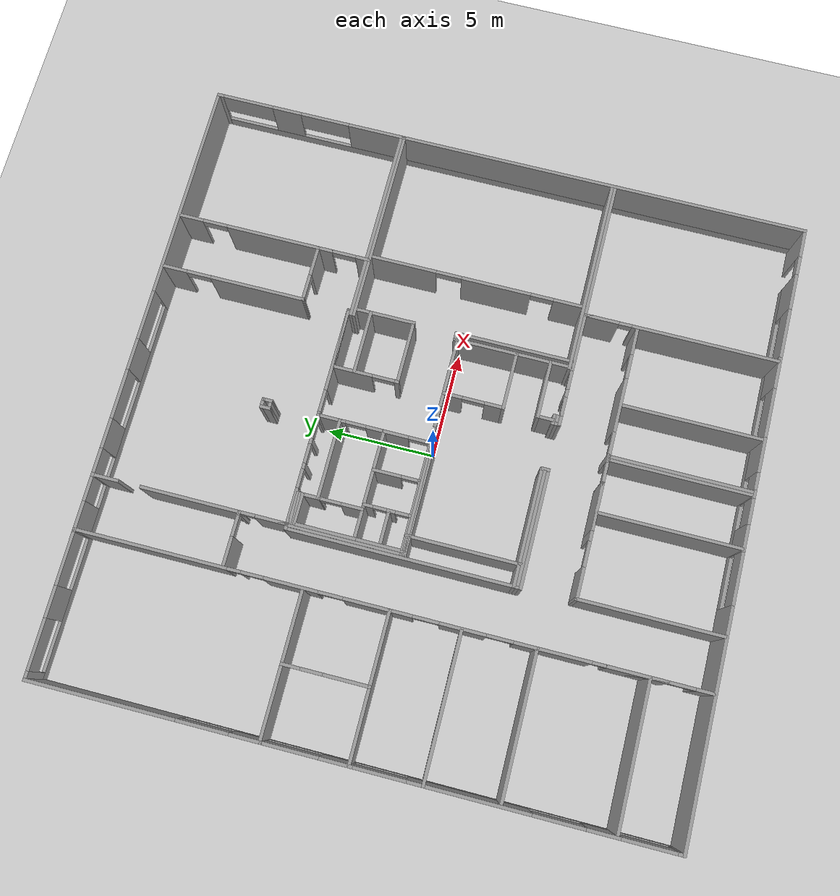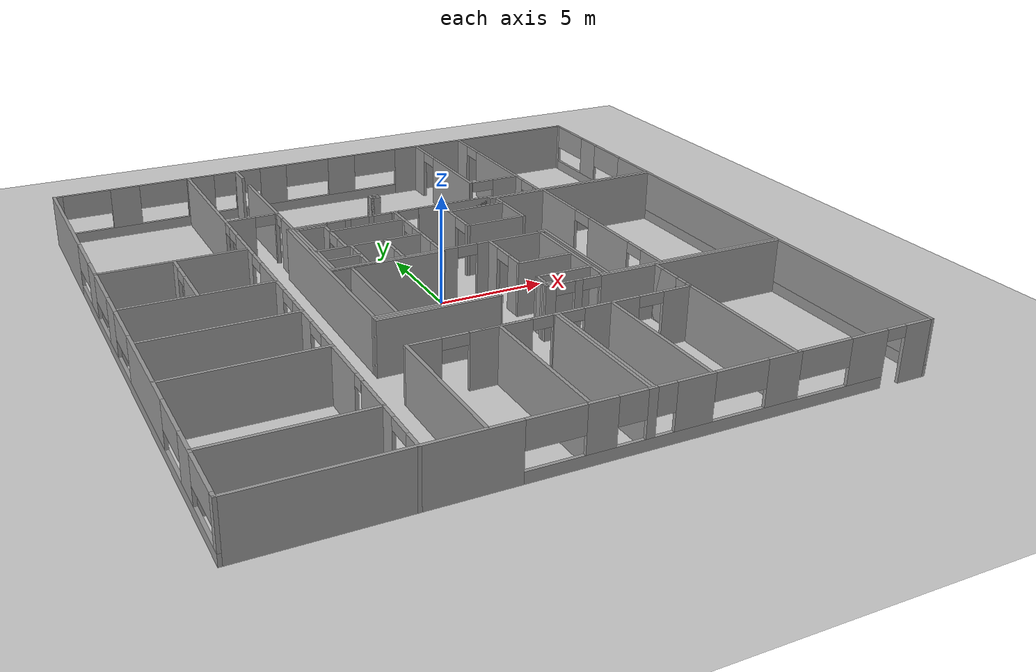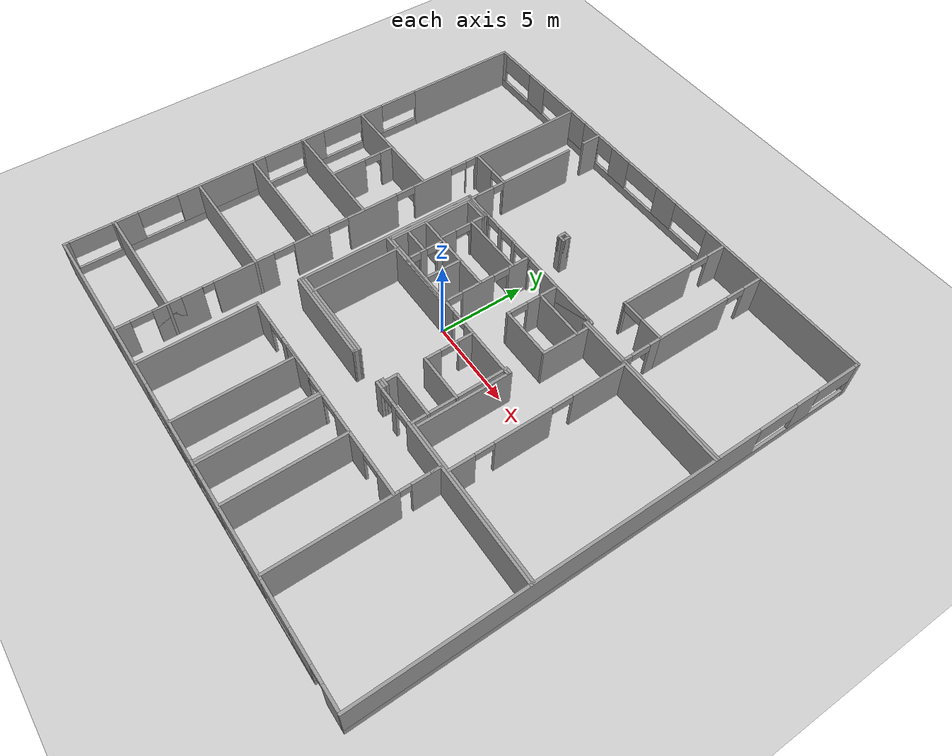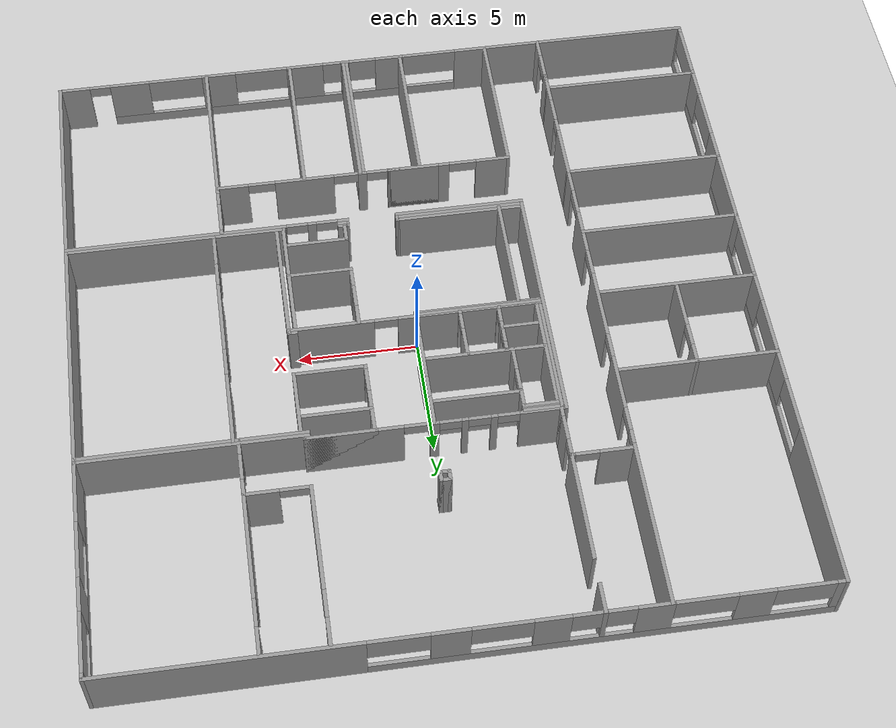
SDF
<?xml version="1.0" ?>
<sdf version="1.4">

  <world name="default">
    <include>
      <uri>model://ground_plane</uri>
    </include>

    <!-- Global light source -->
    <include>
      <uri>model://sun</uri>
    </include>

    <gui fullscreen='0'>
      <camera name='user_camera'>
        <pose>4.927360 -4.376610 3.740080 0.000000 0.275643 2.356190</pose>
        <view_controller>orbit</view_controller>
      </camera>
    </gui>

    <model name="example_factory">
      <include>
        <static>true</static>
        <uri>model://basement</uri>
        <pose> 0 0 0 0 0 0</pose>
      </include>
    </model>

  </world>
</sdf>
